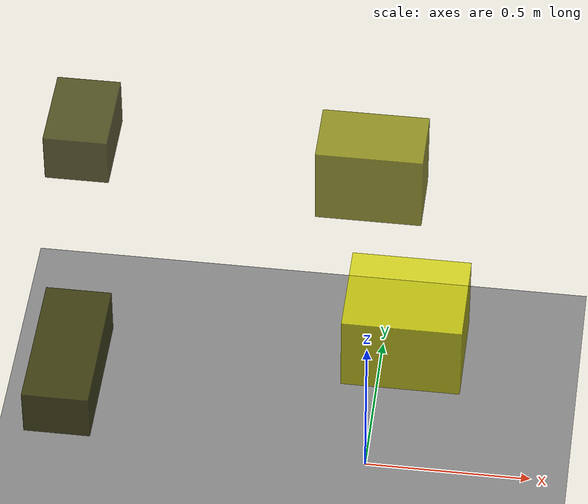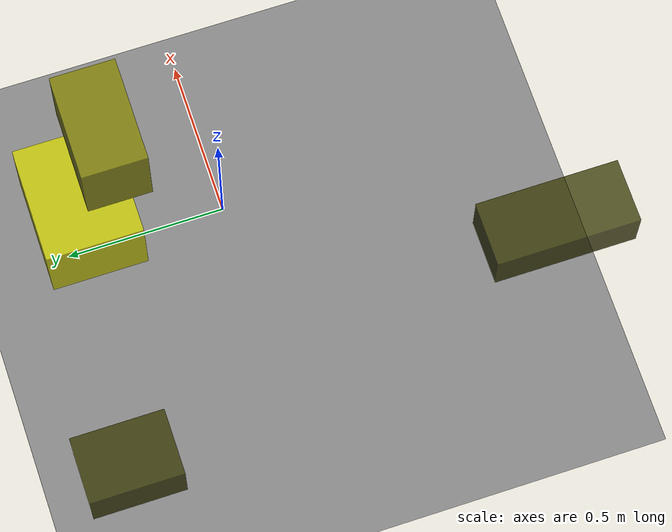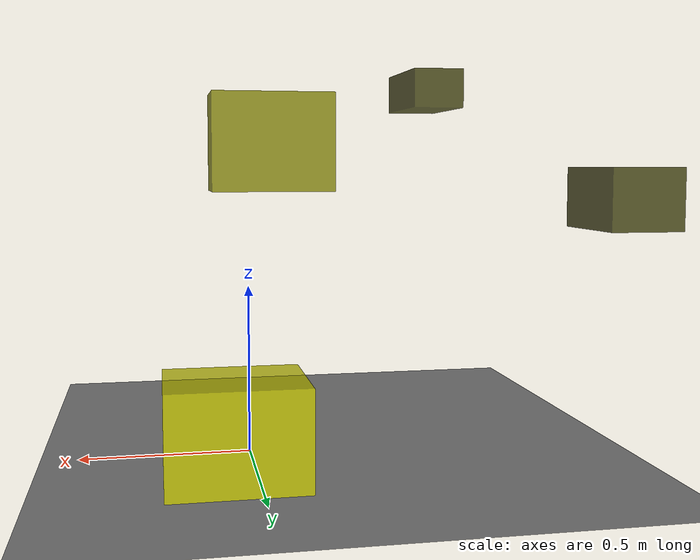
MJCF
<?xml version="1.0"?>
<mujoco model="obstacle_scene">
  <compiler angle="radian" coordinate="local"/>
  <option timestep="0.001" gravity="0 0 -9.81"/>

  <asset>
    <material name="obstacle_mat" rgba="0.8 0.8 0.0 0.8"/>
    <material name="ground_mat" rgba="0.5 0.5 0.5 1"/>
  </asset>

  <worldbody>
    <!-- Ground plane -->
    <geom name="ground" type="plane" size="3 3 0.1" material="ground_mat"/>

    <!-- Obstacles -->
    <body name="obstacle_0" pos="-0.740615 -0.734596 1.137586">
      <geom name="obs_0" type="box" size="0.090197 0.201187 0.070010" rgba="0.2 0.2 0.0 0.8"/>
    </body>
    <body name="obstacle_1" pos="-0.028107 0.337951 0.918123">
      <geom name="obs_1" type="box" size="0.156270 0.095462 0.126085" rgba="0.5 0.5 0.0 0.8"/>
    </body>
    <body name="obstacle_2" pos="0.075361 0.423881 0.183152">
      <geom name="obs_2" type="box" size="0.182826 0.151581 0.132990" rgba="0.8 0.8 0.0 0.8"/>
    </body>
    <body name="obstacle_3" pos="-0.921094 0.540465 0.774542">
      <geom name="obs_3" type="box" size="0.096018 0.134787 0.079996" rgba="0.2 0.2 0.0 0.8"/>
    </body>
  </worldbody>
</mujoco>
